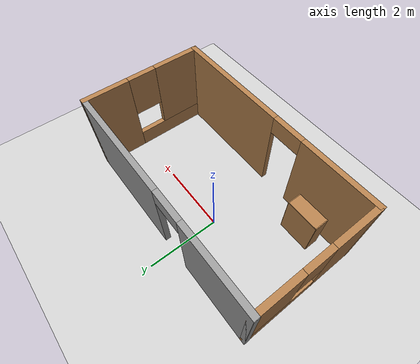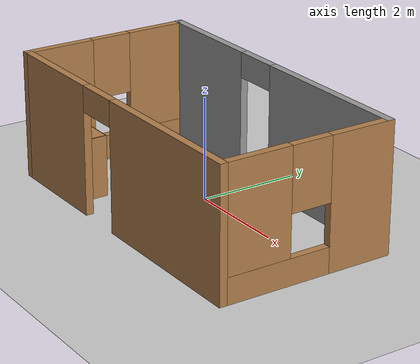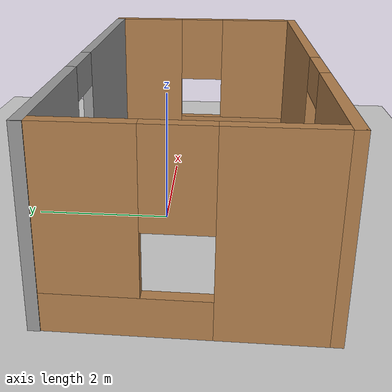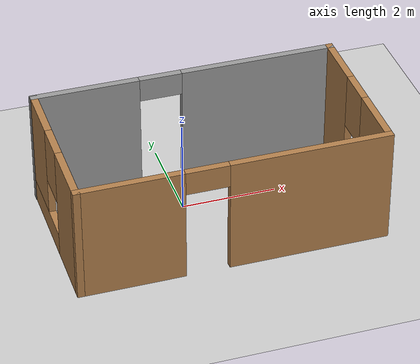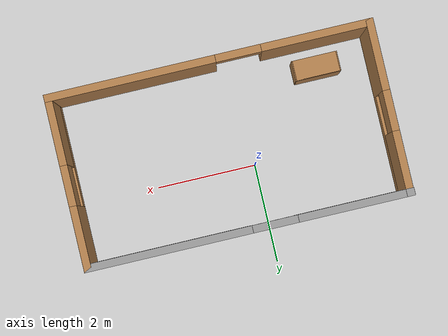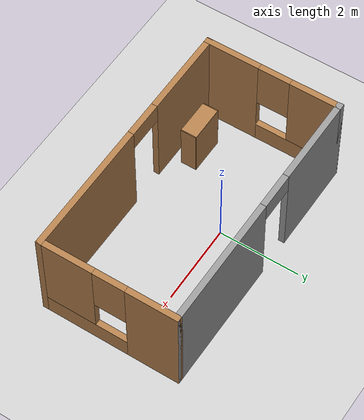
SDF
<sdf version="1.7">
 <world name="default">
  <light name="sun" type="directional">
   <pose>0 0 10 0 -0 0</pose>
   <diffuse>0.8 0.8 0.8 1</diffuse>
   <specular>0.2 0.2 0.2 1</specular>
   <attenuation>
    <range>1000</range>
    <constant>0.9</constant>
    <linear>0.01</linear>
    <quadratic>0.001</quadratic>
   </attenuation>
   <direction>-0.5 0.1 -0.9</direction>
   <spot><inner_angle>0</inner_angle><outer_angle>0</outer_angle><falloff>0</falloff></spot>
  </light>
  <model name="ground_plane">
   <static>1</static>
   <link name="link">
    <collision name="collision">
     <geometry><plane><normal>0 0 1</normal><size>100 100</size></plane></geometry>
     <surface>
      <contact><collide_bitmask>65535</collide_bitmask></contact>
      <friction><ode><mu>100</mu><mu2>50</mu2></ode></friction>
     </surface>
    </collision>
    <visual name="visual">
     <cast_shadows>0</cast_shadows>
     <geometry><plane><normal>0 0 1</normal><size>100 100</size></plane></geometry>
     <material>
      <script><uri>file://media/materials/scripts/gazebo.material</uri><name>Gazebo/Grey</name></script>
     </material>
    </visual>
   </link>
  </model>
  <gravity>0 0 -9.8</gravity>
  <magnetic_field>6e-06 2.3e-05 -4.2e-05</magnetic_field>
  <atmosphere type="adiabatic"/>
  <physics type="ode">
   <max_step_size>0.001</max_step_size>
   <real_time_factor>1</real_time_factor>
   <real_time_update_rate>1000</real_time_update_rate>
  </physics>
  <scene><ambient>0.4 0.4 0.4 1</ambient><background>0.7 0.7 0.7 1</background><shadows>1</shadows></scene>
  <spherical_coordinates>
   <surface_model>EARTH_WGS84</surface_model>
   <latitude_deg>0</latitude_deg>
   <longitude_deg>0</longitude_deg>
   <elevation>0</elevation>
   <heading_deg>0</heading_deg>
  </spherical_coordinates>
  <model name="test">
   <pose>0.43128 -0.09443 0 0 -0 0</pose>
   <link name="Wall_0">
    <collision name="Wall_0_Collision">
     <geometry><box><size>0.16 0.15 2.5</size></box></geometry>
     <pose>0 0 1.25 0 -0 0</pose>
    </collision>
    <visual name="Wall_0_Visual">
     <pose>0 0 1.25 0 -0 0</pose>
     <geometry><box><size>0.16 0.15 2.5</size></box></geometry>
     <material>
      <script><uri>file://media/materials/scripts/gazebo.material</uri><name>Gazebo/Grey</name></script>
      <ambient>1 1 1 1</ambient>
     </material>
     <meta><layer>0</layer></meta>
    </visual>
    <pose>-3.175 1.3375 0 0 -0 0</pose>
   </link>
   <link name="Wall_1">
    <pose>0.005 1.3375 0 0 -0 0</pose>
    <visual name="Wall_1_Visual_0">
     <pose>-2.1125 0 1.25 0 -0 0</pose>
     <geometry><box><size>2.275 0.15 2.5</size></box></geometry>
     <material>
      <script><uri>file://media/materials/scripts/gazebo.material</uri><name>Gazebo/Grey</name></script>
      <ambient>1 1 1 1</ambient>
     </material>
     <meta><layer>0</layer></meta>
    </visual>
    <collision name="Wall_1_Collision_0">
     <geometry><box><size>2.275 0.15 2.5</size></box></geometry>
     <pose>-2.1125 0 1.25 0 -0 0</pose>
    </collision>
    <visual name="Wall_1_Visual_1">
     <pose>1.5875 0 1.25 0 -0 0</pose>
     <geometry><box><size>3.325 0.15 2.5</size></box></geometry>
     <material>
      <script><uri>file://media/materials/scripts/gazebo.material</uri><name>Gazebo/Grey</name></script>
      <ambient>1 1 1 1</ambient>
     </material>
     <meta><layer>0</layer></meta>
    </visual>
    <collision name="Wall_1_Collision_1">
     <geometry><box><size>3.325 0.15 2.5</size></box></geometry>
     <pose>1.5875 0 1.25 0 -0 0</pose>
    </collision>
    <visual name="Wall_1_Visual_2">
     <pose>-0.525 0 2.25 0 -0 0</pose>
     <geometry><box><size>0.9 0.15 0.5</size></box></geometry>
     <material>
      <script><uri>file://media/materials/scripts/gazebo.material</uri><name>Gazebo/Grey</name></script>
      <ambient>1 1 1 1</ambient>
     </material>
     <meta><layer>0</layer></meta>
    </visual>
    <collision name="Wall_1_Collision_2">
     <geometry><box><size>0.9 0.15 0.5</size></box></geometry>
     <pose>-0.525 0 2.25 0 -0 0</pose>
    </collision>
   </link>
   <link name="Wall_2">
    <pose>3.18 -0.3375 0 0 -0 -1.5708</pose>
    <visual name="Wall_2_Visual_0">
     <pose>-1.1025 0 1.25 0 -0 0</pose>
     <geometry><box><size>1.295 0.15 2.5</size></box></geometry>
     <material>
      <script><uri>file://media/materials/scripts/gazebo.material</uri><name>Gazebo/Wood</name></script>
      <ambient>1 1 1 1</ambient>
     </material>
     <meta><layer>0</layer></meta>
    </visual>
    <collision name="Wall_2_Collision_0">
     <geometry><box><size>1.295 0.15 2.5</size></box></geometry>
     <pose>-1.1025 0 1.25 0 -0 0</pose>
    </collision>
    <visual name="Wall_2_Visual_1">
     <pose>0.6475 0 0.25 0 -0 0</pose>
     <geometry><box><size>2.205 0.15 0.5</size></box></geometry>
     <material>
      <script><uri>file://media/materials/scripts/gazebo.material</uri><name>Gazebo/Wood</name></script>
      <ambient>1 1 1 1</ambient>
     </material>
     <meta><layer>0</layer></meta>
    </visual>
    <collision name="Wall_2_Collision_1">
     <geometry><box><size>2.205 0.15 0.5</size></box></geometry>
     <pose>0.6475 0 0.25 0 -0 0</pose>
    </collision>
    <visual name="Wall_2_Visual_2">
     <pose>1.0475 0 1.5 0 -0 0</pose>
     <geometry><box><size>1.405 0.15 2</size></box></geometry>
     <material>
      <script><uri>file://media/materials/scripts/gazebo.material</uri><name>Gazebo/Wood</name></script>
      <ambient>1 1 1 1</ambient>
     </material>
     <meta><layer>0</layer></meta>
    </visual>
    <collision name="Wall_2_Collision_2">
     <geometry><box><size>1.405 0.15 2</size></box></geometry>
     <pose>1.0475 0 1.5 0 -0 0</pose>
    </collision>
    <visual name="Wall_2_Visual_3">
     <pose>-0.055 0 1.9 0 -0 0</pose>
     <geometry><box><size>0.8 0.15 1.2</size></box></geometry>
     <material>
      <script><uri>file://media/materials/scripts/gazebo.material</uri><name>Gazebo/Wood</name></script>
      <ambient>1 1 1 1</ambient>
     </material>
     <meta><layer>0</layer></meta>
    </visual>
    <collision name="Wall_2_Collision_3">
     <geometry><box><size>0.8 0.15 1.2</size></box></geometry>
     <pose>-0.055 0 1.9 0 -0 0</pose>
    </collision>
   </link>
   <link name="Wall_3">
    <pose>0.005 -2.0125 0 0 -0 3.14159</pose>
    <visual name="Wall_3_Visual_0">
     <pose>-1.5625 0 1.25 0 -0 0</pose>
     <geometry><box><size>3.375 0.15 2.5</size></box></geometry>
     <material>
      <script><uri>file://media/materials/scripts/gazebo.material</uri><name>Gazebo/Wood</name></script>
      <ambient>1 1 1 1</ambient>
     </material>
     <meta><layer>0</layer></meta>
    </visual>
    <collision name="Wall_3_Collision_0">
     <geometry><box><size>3.375 0.15 2.5</size></box></geometry>
     <pose>-1.5625 0 1.25 0 -0 0</pose>
    </collision>
    <visual name="Wall_3_Visual_1">
     <pose>2.1375 0 1.25 0 -0 0</pose>
     <geometry><box><size>2.225 0.15 2.5</size></box></geometry>
     <material>
      <script><uri>file://media/materials/scripts/gazebo.material</uri><name>Gazebo/Wood</name></script>
      <ambient>1 1 1 1</ambient>
     </material>
     <meta><layer>0</layer></meta>
    </visual>
    <collision name="Wall_3_Collision_1">
     <geometry><box><size>2.225 0.15 2.5</size></box></geometry>
     <pose>2.1375 0 1.25 0 -0 0</pose>
    </collision>
    <visual name="Wall_3_Visual_2">
     <pose>0.575 0 2.25 0 -0 0</pose>
     <geometry><box><size>0.9 0.15 0.5</size></box></geometry>
     <material>
      <script><uri>file://media/materials/scripts/gazebo.material</uri><name>Gazebo/Wood</name></script>
      <ambient>1 1 1 1</ambient>
     </material>
     <meta><layer>0</layer></meta>
    </visual>
    <collision name="Wall_3_Collision_2">
     <geometry><box><size>0.9 0.15 0.5</size></box></geometry>
     <pose>0.575 0 2.25 0 -0 0</pose>
    </collision>
   </link>
   <link name="Wall_4">
    <pose>-3.17 -0.3375 0 0 -0 1.5708</pose>
    <visual name="Wall_4_Visual_0">
     <pose>-1.0425 0 1.25 0 -0 0</pose>
     <geometry><box><size>1.415 0.15 2.5</size></box></geometry>
     <material>
      <script><uri>file://media/materials/scripts/gazebo.material</uri><name>Gazebo/Wood</name></script>
      <ambient>1 1 1 1</ambient>
     </material>
     <meta><layer>0</layer></meta>
    </visual>
    <collision name="Wall_4_Collision_0">
     <geometry><box><size>1.415 0.15 2.5</size></box></geometry>
     <pose>-1.0425 0 1.25 0 -0 0</pose>
    </collision>
    <visual name="Wall_4_Visual_1">
     <pose>0.7075 0 0.25 0 -0 0</pose>
     <geometry><box><size>2.085 0.15 0.5</size></box></geometry>
     <material>
      <script><uri>file://media/materials/scripts/gazebo.material</uri><name>Gazebo/Wood</name></script>
      <ambient>1 1 1 1</ambient>
     </material>
     <meta><layer>0</layer></meta>
    </visual>
    <collision name="Wall_4_Collision_1">
     <geometry><box><size>2.085 0.15 0.5</size></box></geometry>
     <pose>0.7075 0 0.25 0 -0 0</pose>
    </collision>
    <visual name="Wall_4_Visual_2">
     <pose>1.1075 0 1.5 0 -0 0</pose>
     <geometry><box><size>1.285 0.15 2</size></box></geometry>
     <material>
      <script><uri>file://media/materials/scripts/gazebo.material</uri><name>Gazebo/Wood</name></script>
      <ambient>1 1 1 1</ambient>
     </material>
     <meta><layer>0</layer></meta>
    </visual>
    <collision name="Wall_4_Collision_2">
     <geometry><box><size>1.285 0.15 2</size></box></geometry>
     <pose>1.1075 0 1.5 0 -0 0</pose>
    </collision>
    <visual name="Wall_4_Visual_3">
     <pose>0.065 0 1.9 0 -0 0</pose>
     <geometry><box><size>0.8 0.15 1.2</size></box></geometry>
     <material>
      <script><uri>file://media/materials/scripts/gazebo.material</uri><name>Gazebo/Wood</name></script>
      <ambient>1 1 1 1</ambient>
     </material>
     <meta><layer>0</layer></meta>
    </visual>
    <collision name="Wall_4_Collision_3">
     <geometry><box><size>0.8 0.15 1.2</size></box></geometry>
     <pose>0.065 0 1.9 0 -0 0</pose>
    </collision>
   </link>
   <static>1</static>
  </model>
  <model name="bookshelf">
   <static>1</static>
   <link name="link">
    <inertial><mass>1</mass></inertial>
    <collision name="back">
     <pose>0 0.005 0.6 0 -0 0</pose>
     <geometry><box><size>0.9 0.01 1.2</size></box></geometry>
    </collision>
    <visual name="visual1">
     <pose>0 0.005 0.6 0 -0 0</pose>
     <geometry><box><size>0.9 0.01 1.2</size></box></geometry>
     <material>
      <script><uri>file://media/materials/scripts/gazebo.material</uri><name>Gazebo/Wood</name></script>
     </material>
    </visual>
    <collision name="left_side">
     <pose>0.45 -0.195 0.6 0 -0 0</pose>
     <geometry><box><size>0.02 0.4 1.2</size></box></geometry>
    </collision>
    <visual name="visual2">
     <pose>0.45 -0.195 0.6 0 -0 0</pose>
     <geometry><box><size>0.02 0.4 1.2</size></box></geometry>
     <material>
      <script><uri>file://media/materials/scripts/gazebo.material</uri><name>Gazebo/Wood</name></script>
     </material>
    </visual>
    <collision name="right_side">
     <pose>-0.45 -0.195 0.6 0 -0 0</pose>
     <geometry><box><size>0.02 0.4 1.2</size></box></geometry>
    </collision>
    <visual name="visual3">
     <pose>-0.45 -0.195 0.6 0 -0 0</pose>
     <geometry><box><size>0.02 0.4 1.2</size></box></geometry>
     <material>
      <script><uri>file://media/materials/scripts/gazebo.material</uri><name>Gazebo/Wood</name></script>
     </material>
    </visual>
    <collision name="bottom">
     <pose>0 -0.195 0.03 0 -0 0</pose>
     <geometry><box><size>0.88 0.4 0.06</size></box></geometry>
    </collision>
    <visual name="visual4">
     <pose>0 -0.195 0.03 0 -0 0</pose>
     <geometry><box><size>0.88 0.4 0.06</size></box></geometry>
     <material>
      <script><uri>file://media/materials/scripts/gazebo.material</uri><name>Gazebo/Wood</name></script>
     </material>
    </visual>
    <collision name="top">
     <pose>0 -0.195 1.19 0 -0 0</pose>
     <geometry><box><size>0.88 0.4 0.02</size></box></geometry>
    </collision>
    <visual name="visual5">
     <pose>0 -0.195 1.19 0 -0 0</pose>
     <geometry><box><size>0.88 0.4 0.02</size></box></geometry>
     <material>
      <script><uri>file://media/materials/scripts/gazebo.material</uri><name>Gazebo/Wood</name></script>
     </material>
    </visual>
    <collision name="low_shelf">
     <pose>0 -0.195 0.43 0 -0 0</pose>
     <geometry><box><size>0.88 0.4 0.02</size></box></geometry>
    </collision>
    <visual name="visual6">
     <pose>0 -0.195 0.43 0 -0 0</pose>
     <geometry><box><size>0.88 0.4 0.02</size></box></geometry>
     <material>
      <script><uri>file://media/materials/scripts/gazebo.material</uri><name>Gazebo/Wood</name></script>
     </material>
    </visual>
    <collision name="high_shelf">
     <pose>0 -0.195 0.8 0 -0 0</pose>
     <geometry><box><size>0.88 0.4 0.02</size></box></geometry>
    </collision>
    <visual name="visual7">
     <pose>0 -0.195 0.8 0 -0 0</pose>
     <geometry><box><size>0.88 0.4 0.02</size></box></geometry>
     <material>
      <script><uri>file://media/materials/scripts/gazebo.material</uri><name>Gazebo/Wood</name></script>
     </material>
    </visual>
   </link>
   <pose>-1.61024 -1.40854 0 0 -0 0</pose>
  </model>
 </world>
</sdf>
